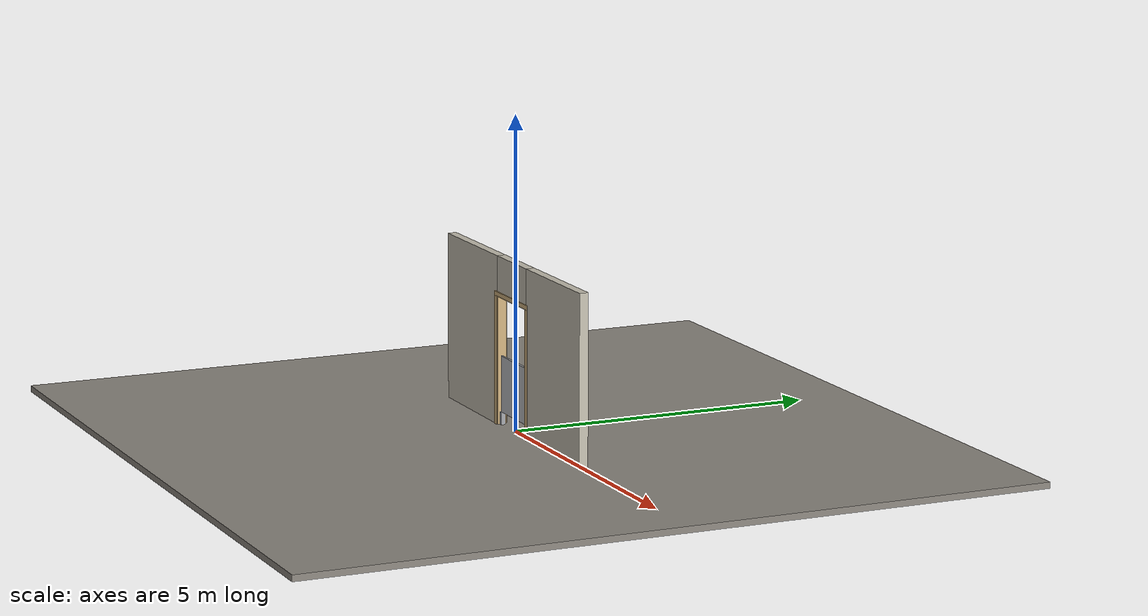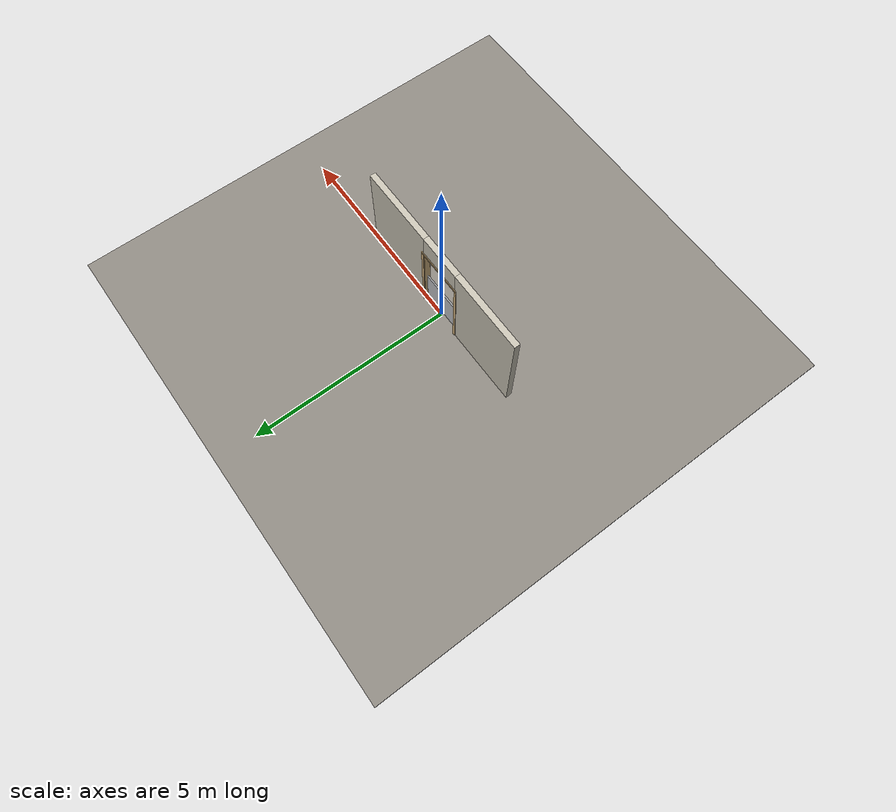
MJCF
<?xml version="1.0" ?>
<mujoco model="db0031_saloon_full">
  <compiler angle="radian" meshdir="../../hardware" texturedir="../../textures" autolimits="true" inertiafromgeom="false"/>
  <option timestep="0.002" integrator="implicitfast" cone="elliptic" impratio="10" noslip_iterations="3">
    <flag multiccd="enable"/>
  </option>
  <size memory="16M"/>
  <default>
    <geom condim="4" solref="0.005 1" solimp="0.95 0.99 0.001"/>
    <joint solreflimit="0.005 1" solimplimit="0.95 0.99 0.001"/>
    <tendon solreflimit="0.005 1"/>
    <equality solref="0.002 1"/>
  </default>
  <visual>
    <headlight ambient="0.4 0.4 0.4" diffuse="0.7 0.7 0.7" specular="0.2 0.2 0.2"/>
    <quality shadowsize="4096"/>
    <map znear="0.01" zfar="60"/>
  </visual>
  <asset>
    <material name="mat_floor" rgba="0.55 0.53 0.5 1" specular="0.2" shininess="0.15" reflectance="0"/>
    <material name="mat_wall" rgba="0.78 0.76 0.7 1" specular="0.2" shininess="0.1" reflectance="0"/>
    <material name="mat_frame" rgba="0.82 0.7 0.5 1" specular="0.2" shininess="0.45" reflectance="0"/>
    <material name="mat_leaf_a" rgba="0.75 0.76 0.77 1" specular="0.8" shininess="0.65" reflectance="0.4"/>
    <material name="mat_hinge" rgba="0.65 0.66 0.68 1" specular="0.74" shininess="0.5" reflectance="0.36"/>
    <material name="mat_leaf_b" rgba="0.75 0.76 0.77 1" specular="0.8" shininess="0.65" reflectance="0.4"/>
    <texture name="skybox" type="skybox" builtin="gradient" rgb1="0.6 0.7 0.85" rgb2="0.9 0.92 0.95" width="256" height="256"/>
  </asset>
  <worldbody>
    <light name="sun" pos="1.5 -2.5 4" dir="-0.3 0.5 -0.8" directional="true" diffuse="0.8 0.8 0.8" specular="0.3 0.3 0.3" castshadow="true"/>
    <light name="fill" pos="-1.5 2.5 3" dir="0.3 -0.5 -0.7" directional="true" diffuse="0.35 0.35 0.4" castshadow="false"/>
    <camera name="robot_view" pos="0 -2.546875 1.738125" xyaxes="1 0 0 0 0.26963 0.962964" fovy="52"/>
    <camera name="far_view" pos="0 2.546875 1.738125" xyaxes="-1 0 0 0 -0.26963 0.962964" fovy="52"/>
    <camera name="iso" pos="1.935625 -2.139375 2.145625" xyaxes="0.741536 0.670913 0 -0.242917 0.268487 0.932151" fovy="46"/>
    <camera name="detail_handle" pos="0.48 -0.8 1.28" xyaxes="0.97561 0.219512 0 -0.070934 0.315262 0.94635" fovy="38"/>
    <geom name="floor" type="box" size="6 6 0.05" pos="0 0 -0.05" material="mat_floor" group="0" contype="1" conaffinity="1" friction="0.8 0.005 0.0001" density="2400"/>
    <geom name="wall_left" type="box" size="0.97575 0.0725 1.35" pos="-1.52425 0 1.35" material="mat_wall" group="0" contype="1" conaffinity="1" friction="0.6 0.005 0.0001" density="800"/>
    <geom name="wall_right" type="box" size="0.97575 0.0725 1.35" pos="1.52425 0 1.35" material="mat_wall" group="0" contype="1" conaffinity="1" friction="0.6 0.005 0.0001" density="800"/>
    <geom name="wall_header" type="box" size="0.5485 0.0725 0.3155" pos="0 0 2.3845" material="mat_wall" group="0" contype="1" conaffinity="1" friction="0.6 0.005 0.0001" density="800"/>
    <geom name="jamb_hinge" type="box" size="0.0095 0.0725 1.025" pos="-0.539 0 1.025" material="mat_frame" group="0" contype="1" conaffinity="1" friction="0.6 0.005 0.0001" density="400"/>
    <geom name="jamb_strike" type="box" size="0.0095 0.0725 1.025" pos="0.539 0 1.025" material="mat_frame" group="0" contype="1" conaffinity="1" friction="0.6 0.005 0.0001" density="400"/>
    <geom name="stud_strike" type="box" size="0.015 0.0725 1.025" pos="0.5635 0 1.025" material="mat_wall" group="0" contype="1" conaffinity="1" friction="0.6 0.005 0.0001" density="500"/>
    <geom name="jamb_head" type="box" size="0.5635 0.0725 0.0095" pos="0.015 0 2.0595" material="mat_frame" group="0" contype="1" conaffinity="1" friction="0.6 0.005 0.0001" density="400"/>
    <geom name="head_stud" type="box" size="0.5635 0.0725 0.015" pos="0.015 0 2.084" material="mat_wall" group="0" contype="1" conaffinity="1" friction="0.6 0.005 0.0001" density="500"/>
    <geom name="casing_l_n" type="box" size="0.035 0.008 1.0345" pos="-0.5785 -0.0805 1.025" material="mat_frame" group="2" contype="0" conaffinity="0" density="400"/>
    <geom name="casing_r_n" type="box" size="0.035 0.008 1.0345" pos="0.5785 -0.0805 1.025" material="mat_frame" group="2" contype="0" conaffinity="0" density="400"/>
    <geom name="casing_h_n" type="box" size="0.6135 0.008 0.035" pos="0 -0.0805 2.099" material="mat_frame" group="2" contype="0" conaffinity="0" density="400"/>
    <geom name="casing_l_p" type="box" size="0.035 0.008 1.0345" pos="-0.5785 0.0805 1.025" material="mat_frame" group="2" contype="0" conaffinity="0" density="400"/>
    <geom name="casing_r_p" type="box" size="0.035 0.008 1.0345" pos="0.5785 0.0805 1.025" material="mat_frame" group="2" contype="0" conaffinity="0" density="400"/>
    <geom name="casing_h_p" type="box" size="0.6135 0.008 0.035" pos="0 0.0805 2.099" material="mat_frame" group="2" contype="0" conaffinity="0" density="400"/>
    <geom name="pivot_bottom_socket" type="box" size="0.035 0.035 0.104" pos="-0.506 0 0.094" material="mat_hinge" group="1" contype="0" conaffinity="0" density="7850"/>
    <geom name="pivot_bottom_socket_2" type="box" size="0.035 0.035 0.104" pos="0.506 0 0.094" material="mat_hinge" group="1" contype="0" conaffinity="0" density="7850"/>
    <site name="approach_point" pos="0 -1.5 0" quat="1 0 0 0" size="0.05" rgba="0.2 0.9 0.2 0.5" group="4"/>
    <site name="goal_point" pos="0 1.5 0" quat="1 0 0 0" size="0.05" rgba="0.2 0.9 0.2 0.5" group="4"/>
    <site name="door_plane_center" pos="0 0 1.025" quat="1 0 0 0" size="0.02" rgba="0.2 0.9 0.2 0.5" group="4"/>
    <body name="leaf_a" pos="-0.5295 0 0">
      <inertial pos="0.271753 0 0.649997" mass="11.26454" quat="0.499995 -0.499995 0.500005 0.500005" diaginertia="0.239073126 0.772450213 1.009231852"/>
      <joint name="leaf_a_hinge" type="hinge" axis="0 0 1" pos="0.0235 0 0" limited="true" range="-1.570796 1.570796" damping="0.760159" frictionloss="0.298754" stiffness="3" springref="0" armature="0.02"/>
      <geom name="leaf_a_slab" type="box" size="0.25 0.0175 0.45" pos="0.2735 0 0.65" material="mat_leaf_a" group="0" contype="1" conaffinity="1" friction="0.35 0.005 0.0001" density="1"/>
      <geom name="pivot_bottom" type="cylinder" size="0.014 0.004" pos="0.0235 0 0.195" material="mat_hinge" group="1" contype="0" conaffinity="0" density="7850"/>
      <geom name="pivot_top" type="cylinder" size="0.014 0.004" pos="0.0235 0 1.104" material="mat_hinge" group="1" contype="0" conaffinity="0" density="7850"/>
      <site name="leaf_a_push_site" pos="0.3985 -0.0175 0.74" quat="1 0 0 0" size="0.015" rgba="0.2 0.9 0.2 0.5" group="4"/>
    </body>
    <body name="leaf_b" pos="0.5295 0 0">
      <inertial pos="-0.271753 0 0.649997" mass="11.26454" quat="0.499995 0.499995 -0.500005 0.500005" diaginertia="0.239073126 0.772450213 1.009231852"/>
      <joint name="leaf_b_hinge" type="hinge" axis="0 0 -1" pos="-0.0235 0 0" limited="true" range="-1.570796 1.570796" damping="0.760159" frictionloss="0.298754" stiffness="3" springref="0" armature="0.02"/>
      <geom name="leaf_b_slab" type="box" size="0.25 0.0175 0.45" pos="-0.2735 0 0.65" material="mat_leaf_b" group="0" contype="1" conaffinity="1" friction="0.35 0.005 0.0001" density="1"/>
      <geom name="pivot_bottom_2" type="cylinder" size="0.014 0.004" pos="-0.0235 0 0.195" material="mat_hinge" group="1" contype="0" conaffinity="0" density="7850"/>
      <geom name="pivot_top_2" type="cylinder" size="0.014 0.004" pos="-0.0235 0 1.104" material="mat_hinge" group="1" contype="0" conaffinity="0" density="7850"/>
      <site name="leaf_b_push_site" pos="-0.3985 -0.0175 0.74" quat="1 0 0 0" size="0.015" rgba="0.2 0.9 0.2 0.5" group="4"/>
    </body>
  </worldbody>
  <sensor>
    <jointpos name="leaf_a_hinge_pos" joint="leaf_a_hinge"/>
    <jointvel name="leaf_a_hinge_vel" joint="leaf_a_hinge"/>
    <jointpos name="leaf_b_hinge_pos" joint="leaf_b_hinge"/>
    <jointvel name="leaf_b_hinge_vel" joint="leaf_b_hinge"/>
  </sensor>
</mujoco>
